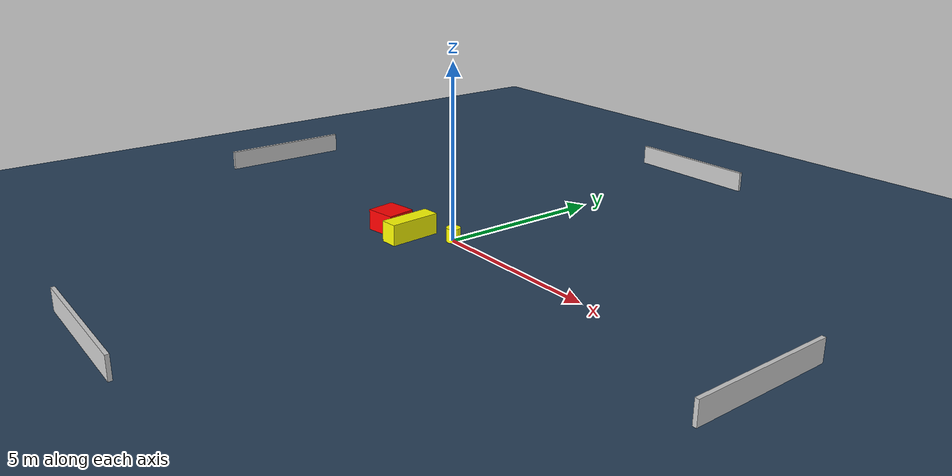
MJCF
<?xml version="1.0" ?>
<mujoco model="generated_environment">
  <option timestep="0.01" integrator="RK4" cone="elliptic"/>
  <default>
    <geom density="1"/>
  </default>
  <asset>
    <texture builtin="gradient" height="3072" name="skybox" rgb1="0.3 0.5 0.7" rgb2="0 0 0" type="skybox" width="512"/>
    <texture builtin="checker" height="300" name="groundplane" rgb1="0.2 0.3 0.4" rgb2="0.1 0.2 0.3" type="2d" width="300"/>
    <material name="groundplane" reflectance="0.2" texrepeat="5 5" texture="groundplane"/>
  </asset>
  <worldbody>
    <light dir="0 0 -1" directional="true" pos="0 0 1.5"/>
    <geom condim="3" friction="0.5 0.005 0.001" material="groundplane" name="floor" pos="0 0 0" size="0 0 0.05" type="plane"/>
    <body name="walls">
      <geom name="wall_1" condim="4" pos="-10.0 0.0 0.3" rgba="0.800000011920929 0.800000011920929 0.800000011920929 1.0" size="0.05 2.0 0.3" type="box"/>
      <geom name="wall_2" condim="4" pos="10.0 0.0 0.3" rgba="0.800000011920929 0.800000011920929 0.800000011920929 1.0" size="0.05 2.0 0.3" type="box"/>
      <geom name="wall_3" condim="4" pos="0.0 -10.0 0.3" rgba="0.800000011920929 0.800000011920929 0.800000011920929 1.0" size="2.0 0.05 0.3" type="box"/>
      <geom name="wall_4" condim="4" pos="0.0 10.0 0.3" rgba="0.800000011920929 0.800000011920929 0.800000011920929 1.0" size="2.0 0.05 0.3" type="box"/>
    </body>
    <body name="robot">
      <joint name="joint_x" type="slide" pos="0 0 0" axis="1 0 0"/>
      <joint name="joint_y" type="slide" pos="0 0 0" axis="0 1 0"/>
      <geom name="robot" type="cylinder" pos="0.0 0.0 0.2" size="0.2 0.2 0.0" mass="5.0" friction="1.0 0.005 0.0001" condim="4" rgba="1.0 1.0 0.0 1.0"/>
    </body>
    <body name="obstacle_1_movable">
      <geom name="obstacle_1_movable" condim="4" pos="-0.9556091024063276 -0.7946235684324457 0.3" euler="0 0 93.94412677090344" friction="0.0 0.005 0.001" rgba="1.0 1.0 0.0 1.0" size="0.7560033572152847 0.25478138882274287 0.3" type="box" mass="0.1"/>
      <joint type="free"/>
    </body>
    <body name="obstacle_2_static">
      <geom name="obstacle_2_static" condim="4" pos="-1.7861759072697698 -0.8771915632892927 0.3" euler="0 0 278.8161135985039" friction="0.0 0.005 0.001" rgba="1.0 0.0 0.0 1.0" size="0.4237028739464219 0.4466229776180499 0.3" type="box"/>
    </body>
  </worldbody>
  <actuator>
    <motor name="actuator_x" joint="joint_x" gear="1" ctrlrange="-1 1"/>
    <motor name="actuator_y" joint="joint_y" gear="1" ctrlrange="-1 1"/>
  </actuator>
</mujoco>
